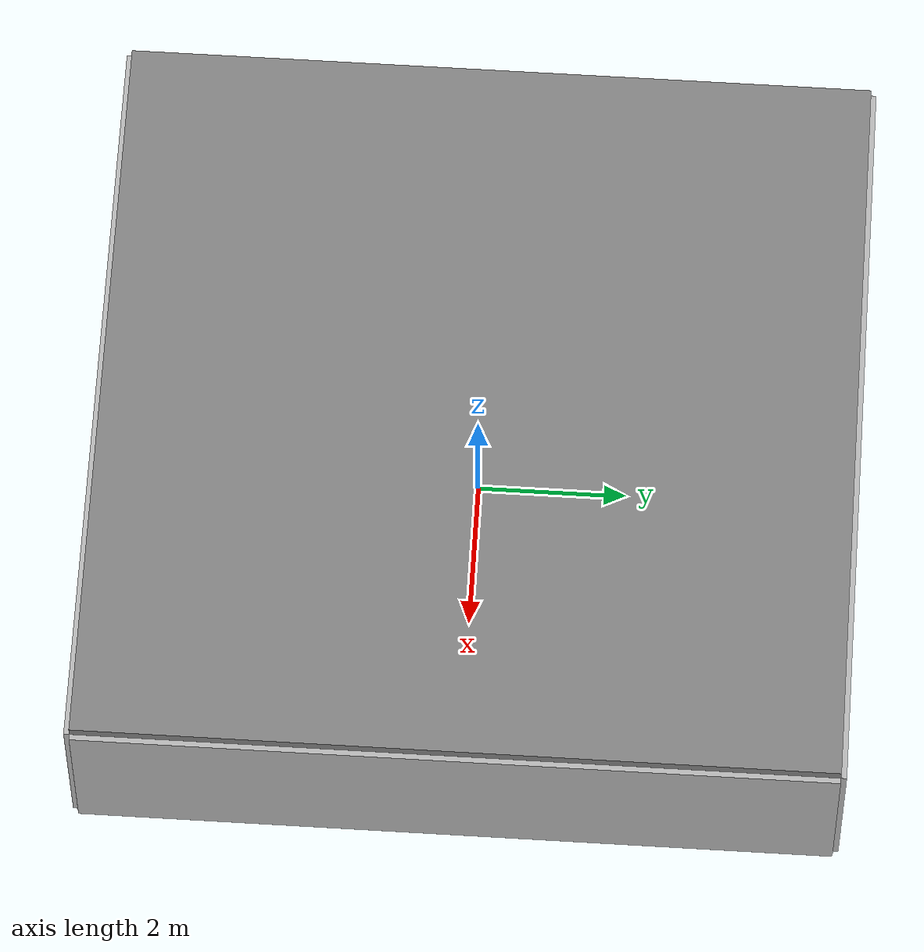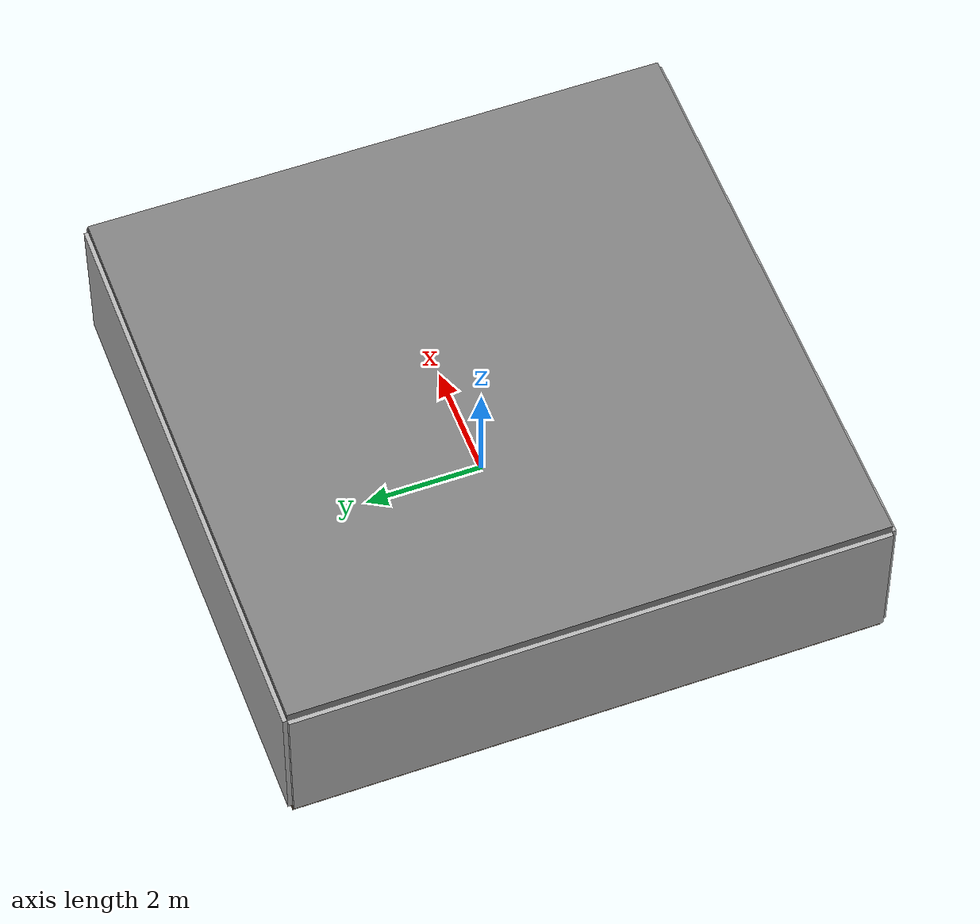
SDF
<?xml version="1.0" ?>
<sdf version="1.8">
  <world name="outdoor_flat_features_world">

    <!-- 0. 物理引擎配置：降频至 200Hz，降低 RK3588 CPU 负荷 -->
    <physics name="fast_physics" type="ignored">
      <max_step_size>0.005</max_step_size>
      <real_time_factor>1.0</real_time_factor>
    </physics>

    <!-- 1. Ignition 核心基础物理与控制系统 -->
    <plugin filename="libignition-gazebo-physics-system.so" name="ignition::gazebo::systems::Physics"/>
    <plugin filename="libignition-gazebo-user-commands-system.so" name="ignition::gazebo::systems::UserCommands"/>
    <plugin filename="libignition-gazebo-scene-broadcaster-system.so" name="ignition::gazebo::systems::SceneBroadcaster"/>

    <!-- 2. 独立加载 IMU 系统 -->
    <plugin filename="libignition-gazebo-imu-system.so" name="ignition::gazebo::systems::Imu"/>

    <!-- 3. 加载传感器渲染系统，指定兼容 ARM64 的 ogre 引擎 -->
    <plugin filename="libignition-gazebo-sensors-system.so" name="ignition::gazebo::systems::Sensors">
      <render_engine>ogre</render_engine>
    </plugin>

    <!-- 纯本地硬编码的太阳（室内照明）                                  -->
    <light type="directional" name="sun">
      <cast_shadows>true</cast_shadows>
      <pose>0 0 3 0 0 0</pose>
      <diffuse>0.8 0.8 0.8 1</diffuse>
      <specular>0.2 0.2 0.2 1</specular>
      <attenuation>
        <range>1000</range>
        <constant>0.9</constant>
        <linear>0.01</linear>
        <quadratic>0.001</quadratic>
      </attenuation>
      <direction>-0.5 0.1 -0.9</direction>
    </light>

    <!-- 地面 (10m×10m 房间底板)                                      -->
    <model name="floor">
      <static>true</static>
      <pose>0 0 -0.075 0 0 0</pose>
      <link name="link">
        <collision name="collision">
          <geometry><box><size>10 10 0.15</size></box></geometry>
        </collision>
        <visual name="visual">
          <geometry><box><size>10 10 0.15</size></box></geometry>
          <material>
            <ambient>0.6 0.5 0.4 1</ambient>
            <diffuse>0.6 0.5 0.4 1</diffuse>
            <specular>0.1 0.1 0.1 1</specular>
          </material>
        </visual>
      </link>
    </model>

    <!-- 四面围墙 (10m × 10m × 2.5m 封闭房间)                          -->

    <!-- 北墙 (y = +5.0) -->
    <model name="wall_north">
      <static>true</static>
      <pose>0 5.0 1.25 0 0 0</pose>
      <link name="link">
        <collision name="collision">
          <geometry><box><size>10.0 0.15 2.5</size></box></geometry>
        </collision>
        <visual name="visual">
          <geometry><box><size>10.0 0.15 2.5</size></box></geometry>
          <material>
            <ambient>0.7 0.7 0.7 1</ambient>
            <diffuse>0.7 0.7 0.7 1</diffuse>
            <specular>0.1 0.1 0.1 1</specular>
          </material>
        </visual>
      </link>
    </model>

    <!-- 南墙 (y = -5.0) -->
    <model name="wall_south">
      <static>true</static>
      <pose>0 -5.0 1.25 0 0 0</pose>
      <link name="link">
        <collision name="collision">
          <geometry><box><size>10.0 0.15 2.5</size></box></geometry>
        </collision>
        <visual name="visual">
          <geometry><box><size>10.0 0.15 2.5</size></box></geometry>
          <material>
            <ambient>0.7 0.7 0.7 1</ambient>
            <diffuse>0.7 0.7 0.7 1</diffuse>
            <specular>0.1 0.1 0.1 1</specular>
          </material>
        </visual>
      </link>
    </model>

    <!-- 东墙 (x = +5.0) -->
    <model name="wall_east">
      <static>true</static>
      <pose>5.0 0 1.25 0 0 0</pose>
      <link name="link">
        <collision name="collision">
          <geometry><box><size>0.15 10.0 2.5</size></box></geometry>
        </collision>
        <visual name="visual">
          <geometry><box><size>0.15 10.0 2.5</size></box></geometry>
          <material>
            <ambient>0.7 0.7 0.7 1</ambient>
            <diffuse>0.7 0.7 0.7 1</diffuse>
            <specular>0.1 0.1 0.1 1</specular>
          </material>
        </visual>
      </link>
    </model>

    <!-- 西墙 (x = -5.0) -->
    <model name="wall_west">
      <static>true</static>
      <pose>-5.0 0 1.25 0 0 0</pose>
      <link name="link">
        <collision name="collision">
          <geometry><box><size>0.15 10.0 2.5</size></box></geometry>
        </collision>
        <visual name="visual">
          <geometry><box><size>0.15 10.0 2.5</size></box></geometry>
          <material>
            <ambient>0.7 0.7 0.7 1</ambient>
            <diffuse>0.7 0.7 0.7 1</diffuse>
            <specular>0.1 0.1 0.1 1</specular>
          </material>
        </visual>
      </link>
    </model>

    <!-- 天花顶板 (封闭房间顶部)                                       -->
    <model name="ceiling">
      <static>true</static>
      <pose>0 0 2.575 0 0 0</pose>
      <link name="link">
        <collision name="collision">
          <geometry><box><size>10 10 0.15</size></box></geometry>
        </collision>
        <visual name="visual">
          <geometry><box><size>10 10 0.15</size></box></geometry>
          <material>
            <ambient>0.5 0.5 0.5 1</ambient>
            <diffuse>0.5 0.5 0.5 1</diffuse>
            <specular>0.1 0.1 0.1 1</specular>
          </material>
        </visual>
      </link>
    </model>

    <!-- 室内障碍物：3 个错落有致的长方体柱子                           -->

    <!-- 柱子 1: 宽矮粗柱 (左后方) -->
    <model name="pillar_1">
      <static>true</static>
      <pose>-2.5 -2.5 1.25 0 0 0</pose>
      <link name="link">
        <collision name="collision">
          <geometry><box><size>1.2 0.5 2.5</size></box></geometry>
        </collision>
        <visual name="visual">
          <geometry><box><size>1.2 0.5 2.5</size></box></geometry>
          <material>
            <ambient>0.8 0.3 0.3 1</ambient>
            <diffuse>0.8 0.3 0.3 1</diffuse>
            <specular>0.2 0.2 0.2 1</specular>
          </material>
        </visual>
      </link>
    </model>

    <!-- 柱子 2: 窄高方柱 (右前方) -->
    <model name="pillar_2">
      <static>true</static>
      <pose>2.0 1.5 1.25 0 0 0.3</pose>
      <link name="link">
        <collision name="collision">
          <geometry><box><size>0.5 0.5 2.5</size></box></geometry>
        </collision>
        <visual name="visual">
          <geometry><box><size>0.5 0.5 2.5</size></box></geometry>
          <material>
            <ambient>0.3 0.5 0.8 1</ambient>
            <diffuse>0.3 0.5 0.8 1</diffuse>
            <specular>0.2 0.2 0.2 1</specular>
          </material>
        </visual>
      </link>
    </model>

    <!-- 柱子 3: 扁长板柱 (中央偏右) -->
    <model name="pillar_3">
      <static>true</static>
      <pose>0.5 3.0 1.25 0 0 -0.2</pose>
      <link name="link">
        <collision name="collision">
          <geometry><box><size>1.5 0.3 2.5</size></box></geometry>
        </collision>
        <visual name="visual">
          <geometry><box><size>1.5 0.3 2.5</size></box></geometry>
          <material>
            <ambient>0.3 0.8 0.4 1</ambient>
            <diffuse>0.3 0.8 0.4 1</diffuse>
            <specular>0.2 0.2 0.2 1</specular>
          </material>
        </visual>
      </link>
    </model>

  </world>
</sdf>
